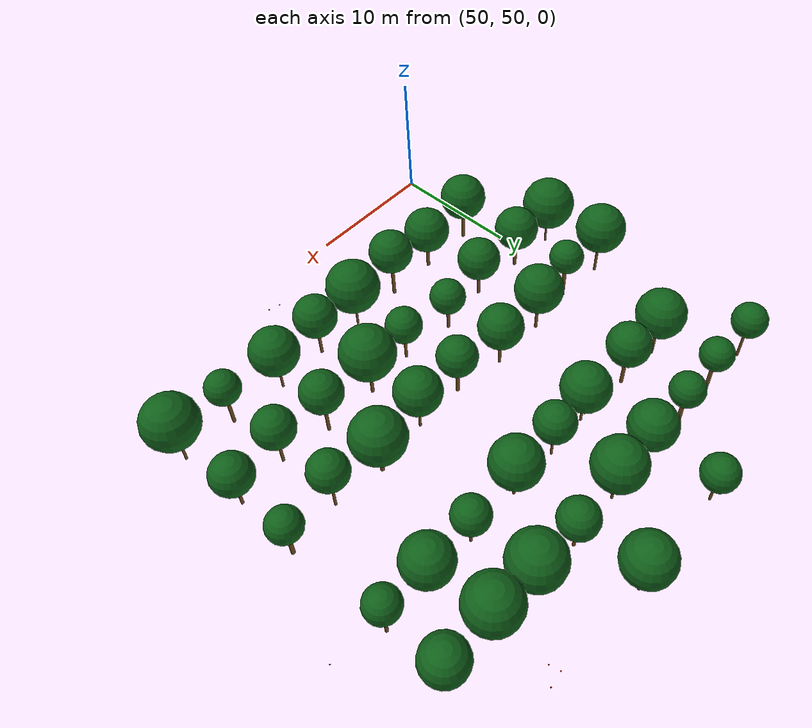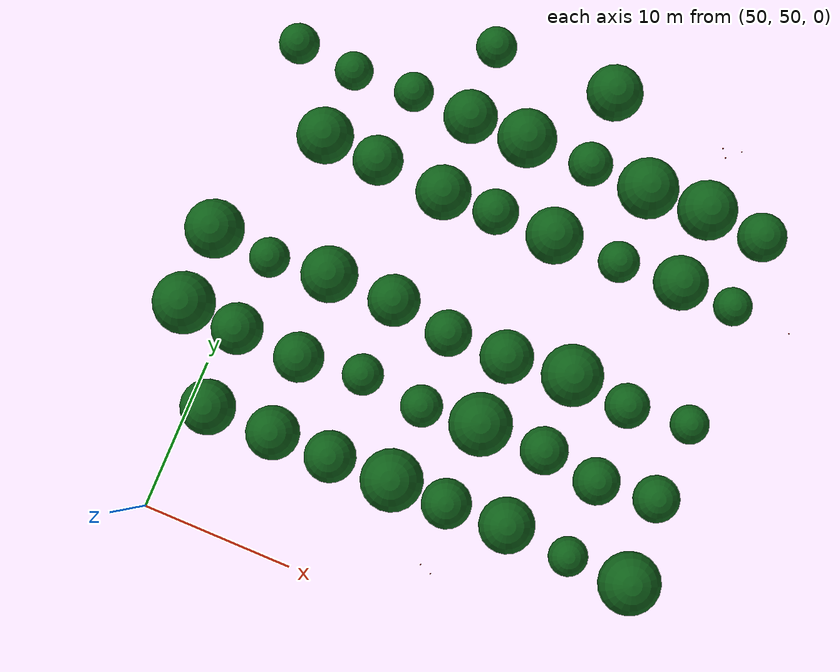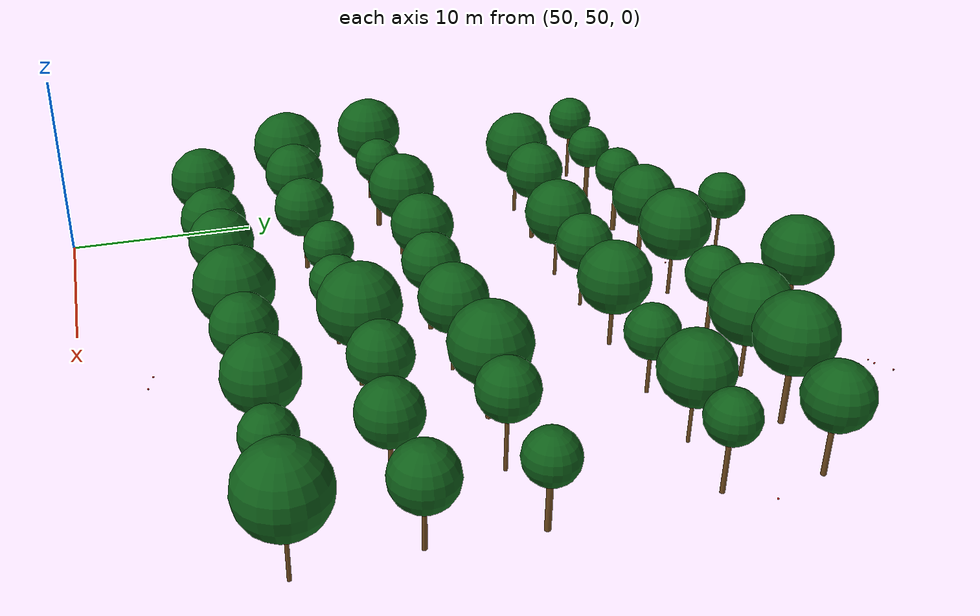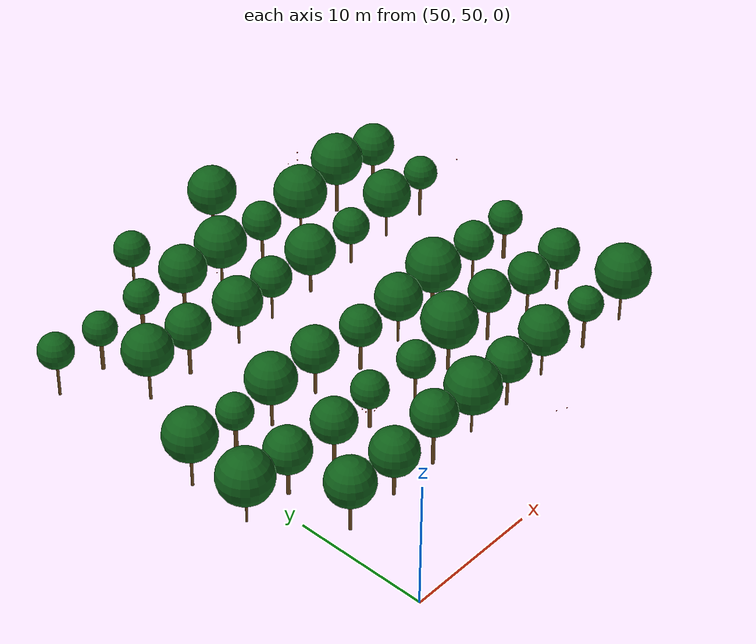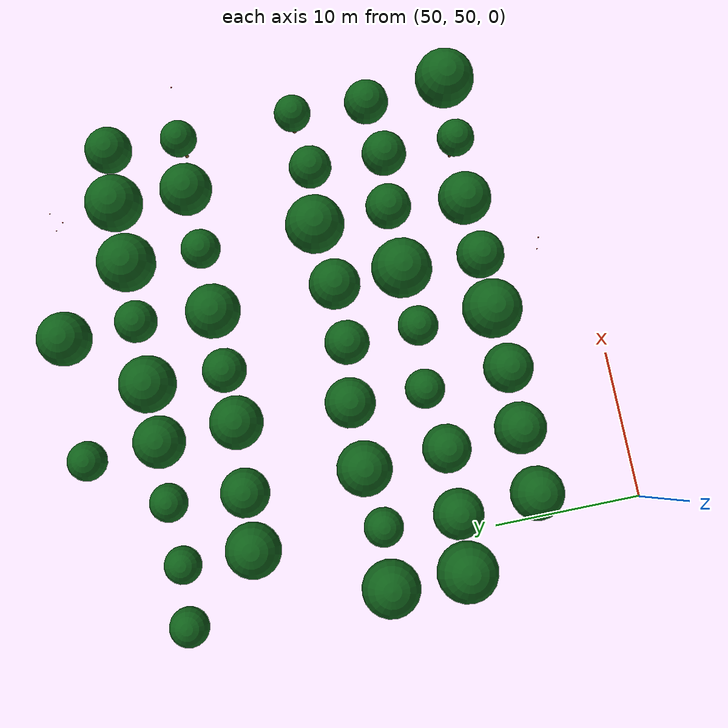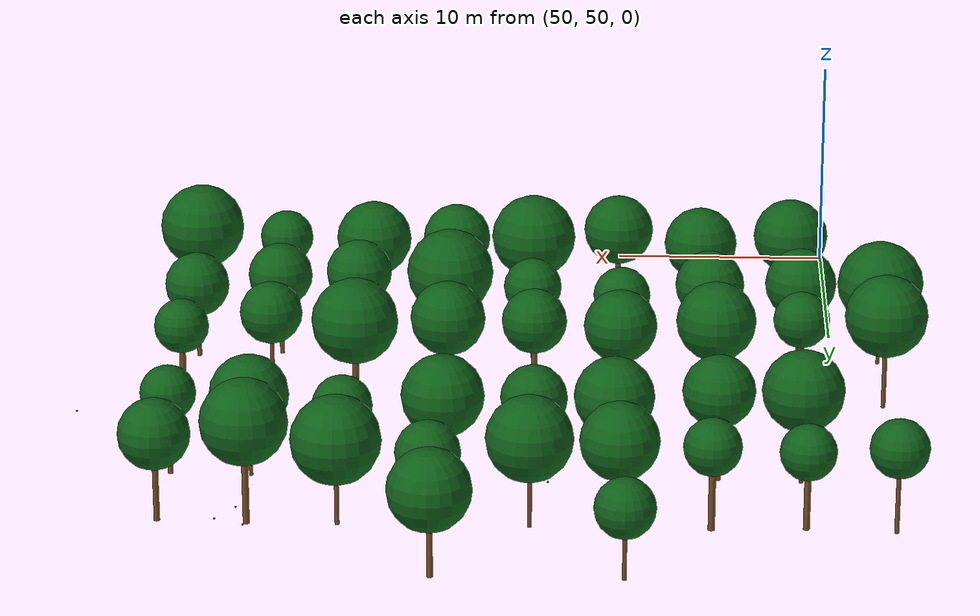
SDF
<sdf version="1.9">
 <world name="cheongsong_orchard">
  <model name="apple_tree_1842">
   <static>true</static>
   <pose>51.83 57.54 0 0 0 0</pose>
   <link name="link">
    <collision name="trunk_col">
     <pose>0 0 1.23 0 0 0</pose>
     <geometry><cylinder><radius>0.118</radius><length>2.47</length></cylinder></geometry>
    </collision>
    <visual name="trunk_vis">
     <pose>0 0 1.23 0 0 0</pose>
     <geometry><cylinder><radius>0.118</radius><length>2.47</length></cylinder></geometry>
     <material><ambient>0.35 0.22 0.08 1</ambient><diffuse>0.45 0.30 0.12 1</diffuse></material>
    </visual>
    <collision name="canopy_col">
     <pose>0 0 4.22 0 0 0</pose>
     <geometry><sphere><radius>1.75</radius></sphere></geometry>
    </collision>
    <visual name="canopy_vis">
     <pose>0 0 4.22 0 0 0</pose>
     <geometry><sphere><radius>1.75</radius></sphere></geometry>
     <material><ambient>0.04 0.28 0.06 1</ambient><diffuse>0.06 0.38 0.10 1</diffuse></material>
    </visual>
   </link>
  </model>
  <model name="apple_tree_1843">
   <static>true</static>
   <pose>56.11 57.61 0 0 0 0</pose>
   <link name="link">
    <collision name="trunk_col">
     <pose>0 0 1.05 0 0 0</pose>
     <geometry><cylinder><radius>0.128</radius><length>2.10</length></cylinder></geometry>
    </collision>
    <visual name="trunk_vis">
     <pose>0 0 1.05 0 0 0</pose>
     <geometry><cylinder><radius>0.128</radius><length>2.10</length></cylinder></geometry>
     <material><ambient>0.35 0.22 0.08 1</ambient><diffuse>0.45 0.30 0.12 1</diffuse></material>
    </visual>
    <collision name="canopy_col">
     <pose>0 0 3.81 0 0 0</pose>
     <geometry><sphere><radius>1.71</radius></sphere></geometry>
    </collision>
    <visual name="canopy_vis">
     <pose>0 0 3.81 0 0 0</pose>
     <geometry><sphere><radius>1.71</radius></sphere></geometry>
     <material><ambient>0.04 0.28 0.06 1</ambient><diffuse>0.06 0.38 0.10 1</diffuse></material>
    </visual>
   </link>
  </model>
  <model name="apple_tree_1844">
   <static>true</static>
   <pose>60.03 57.65 0 0 0 0</pose>
   <link name="link">
    <collision name="trunk_col">
     <pose>0 0 1.43 0 0 0</pose>
     <geometry><cylinder><radius>0.130</radius><length>2.86</length></cylinder></geometry>
    </collision>
    <visual name="trunk_vis">
     <pose>0 0 1.43 0 0 0</pose>
     <geometry><cylinder><radius>0.130</radius><length>2.86</length></cylinder></geometry>
     <material><ambient>0.35 0.22 0.08 1</ambient><diffuse>0.45 0.30 0.12 1</diffuse></material>
    </visual>
    <collision name="canopy_col">
     <pose>0 0 4.49 0 0 0</pose>
     <geometry><sphere><radius>1.63</radius></sphere></geometry>
    </collision>
    <visual name="canopy_vis">
     <pose>0 0 4.49 0 0 0</pose>
     <geometry><sphere><radius>1.63</radius></sphere></geometry>
     <material><ambient>0.04 0.28 0.06 1</ambient><diffuse>0.06 0.38 0.10 1</diffuse></material>
    </visual>
   </link>
  </model>
  <model name="apple_tree_1845">
   <static>true</static>
   <pose>64.08 57.76 0 0 0 0</pose>
   <link name="link">
    <collision name="trunk_col">
     <pose>0 0 1.07 0 0 0</pose>
     <geometry><cylinder><radius>0.083</radius><length>2.15</length></cylinder></geometry>
    </collision>
    <visual name="trunk_vis">
     <pose>0 0 1.07 0 0 0</pose>
     <geometry><cylinder><radius>0.083</radius><length>2.15</length></cylinder></geometry>
     <material><ambient>0.35 0.22 0.08 1</ambient><diffuse>0.45 0.30 0.12 1</diffuse></material>
    </visual>
    <collision name="canopy_col">
     <pose>0 0 4.12 0 0 0</pose>
     <geometry><sphere><radius>1.98</radius></sphere></geometry>
    </collision>
    <visual name="canopy_vis">
     <pose>0 0 4.12 0 0 0</pose>
     <geometry><sphere><radius>1.98</radius></sphere></geometry>
     <material><ambient>0.04 0.28 0.06 1</ambient><diffuse>0.06 0.38 0.10 1</diffuse></material>
    </visual>
   </link>
  </model>
  <model name="apple_tree_1846">
   <static>true</static>
   <pose>67.75 57.74 0 0 0 0</pose>
   <link name="link">
    <collision name="trunk_col">
     <pose>0 0 1.23 0 0 0</pose>
     <geometry><cylinder><radius>0.109</radius><length>2.46</length></cylinder></geometry>
    </collision>
    <visual name="trunk_vis">
     <pose>0 0 1.23 0 0 0</pose>
     <geometry><cylinder><radius>0.109</radius><length>2.46</length></cylinder></geometry>
     <material><ambient>0.35 0.22 0.08 1</ambient><diffuse>0.45 0.30 0.12 1</diffuse></material>
    </visual>
    <collision name="canopy_col">
     <pose>0 0 4.04 0 0 0</pose>
     <geometry><sphere><radius>1.58</radius></sphere></geometry>
    </collision>
    <visual name="canopy_vis">
     <pose>0 0 4.04 0 0 0</pose>
     <geometry><sphere><radius>1.58</radius></sphere></geometry>
     <material><ambient>0.04 0.28 0.06 1</ambient><diffuse>0.06 0.38 0.10 1</diffuse></material>
    </visual>
   </link>
  </model>
  <model name="apple_tree_1847">
   <static>true</static>
   <pose>71.70 57.94 0 0 0 0</pose>
   <link name="link">
    <collision name="trunk_col">
     <pose>0 0 1.12 0 0 0</pose>
     <geometry><cylinder><radius>0.085</radius><length>2.24</length></cylinder></geometry>
    </collision>
    <visual name="trunk_vis">
     <pose>0 0 1.12 0 0 0</pose>
     <geometry><cylinder><radius>0.085</radius><length>2.24</length></cylinder></geometry>
     <material><ambient>0.35 0.22 0.08 1</ambient><diffuse>0.45 0.30 0.12 1</diffuse></material>
    </visual>
    <collision name="canopy_col">
     <pose>0 0 4.01 0 0 0</pose>
     <geometry><sphere><radius>1.77</radius></sphere></geometry>
    </collision>
    <visual name="canopy_vis">
     <pose>0 0 4.01 0 0 0</pose>
     <geometry><sphere><radius>1.77</radius></sphere></geometry>
     <material><ambient>0.04 0.28 0.06 1</ambient><diffuse>0.06 0.38 0.10 1</diffuse></material>
    </visual>
   </link>
  </model>
  <model name="apple_tree_1848">
   <static>true</static>
   <pose>75.91 57.64 0 0 0 0</pose>
   <link name="link">
    <collision name="trunk_col">
     <pose>0 0 1.33 0 0 0</pose>
     <geometry><cylinder><radius>0.122</radius><length>2.67</length></cylinder></geometry>
    </collision>
    <visual name="trunk_vis">
     <pose>0 0 1.33 0 0 0</pose>
     <geometry><cylinder><radius>0.122</radius><length>2.67</length></cylinder></geometry>
     <material><ambient>0.35 0.22 0.08 1</ambient><diffuse>0.45 0.30 0.12 1</diffuse></material>
    </visual>
    <collision name="canopy_col">
     <pose>0 0 3.92 0 0 0</pose>
     <geometry><sphere><radius>1.25</radius></sphere></geometry>
    </collision>
    <visual name="canopy_vis">
     <pose>0 0 3.92 0 0 0</pose>
     <geometry><sphere><radius>1.25</radius></sphere></geometry>
     <material><ambient>0.04 0.28 0.06 1</ambient><diffuse>0.06 0.38 0.10 1</diffuse></material>
    </visual>
   </link>
  </model>
  <model name="apple_tree_1849">
   <static>true</static>
   <pose>79.96 57.59 0 0 0 0</pose>
   <link name="link">
    <collision name="trunk_col">
     <pose>0 0 1.21 0 0 0</pose>
     <geometry><cylinder><radius>0.091</radius><length>2.42</length></cylinder></geometry>
    </collision>
    <visual name="trunk_vis">
     <pose>0 0 1.21 0 0 0</pose>
     <geometry><cylinder><radius>0.091</radius><length>2.42</length></cylinder></geometry>
     <material><ambient>0.35 0.22 0.08 1</ambient><diffuse>0.45 0.30 0.12 1</diffuse></material>
    </visual>
    <collision name="canopy_col">
     <pose>0 0 4.40 0 0 0</pose>
     <geometry><sphere><radius>1.98</radius></sphere></geometry>
    </collision>
    <visual name="canopy_vis">
     <pose>0 0 4.40 0 0 0</pose>
     <geometry><sphere><radius>1.98</radius></sphere></geometry>
     <material><ambient>0.04 0.28 0.06 1</ambient><diffuse>0.06 0.38 0.10 1</diffuse></material>
    </visual>
   </link>
  </model>
  <model name="apple_tree_1897">
   <static>true</static>
   <pose>47.84 62.92 0 0 0 0</pose>
   <link name="link">
    <collision name="trunk_col">
     <pose>0 0 1.02 0 0 0</pose>
     <geometry><cylinder><radius>0.080</radius><length>2.04</length></cylinder></geometry>
    </collision>
    <visual name="trunk_vis">
     <pose>0 0 1.02 0 0 0</pose>
     <geometry><cylinder><radius>0.080</radius><length>2.04</length></cylinder></geometry>
     <material><ambient>0.35 0.22 0.08 1</ambient><diffuse>0.45 0.30 0.12 1</diffuse></material>
    </visual>
    <collision name="canopy_col">
     <pose>0 0 4.03 0 0 0</pose>
     <geometry><sphere><radius>1.99</radius></sphere></geometry>
    </collision>
    <visual name="canopy_vis">
     <pose>0 0 4.03 0 0 0</pose>
     <geometry><sphere><radius>1.99</radius></sphere></geometry>
     <material><ambient>0.04 0.28 0.06 1</ambient><diffuse>0.06 0.38 0.10 1</diffuse></material>
    </visual>
   </link>
  </model>
  <model name="apple_tree_1898">
   <static>true</static>
   <pose>51.52 62.71 0 0 0 0</pose>
   <link name="link">
    <collision name="trunk_col">
     <pose>0 0 1.12 0 0 0</pose>
     <geometry><cylinder><radius>0.136</radius><length>2.25</length></cylinder></geometry>
    </collision>
    <visual name="trunk_vis">
     <pose>0 0 1.12 0 0 0</pose>
     <geometry><cylinder><radius>0.136</radius><length>2.25</length></cylinder></geometry>
     <material><ambient>0.35 0.22 0.08 1</ambient><diffuse>0.45 0.30 0.12 1</diffuse></material>
    </visual>
    <collision name="canopy_col">
     <pose>0 0 3.90 0 0 0</pose>
     <geometry><sphere><radius>1.65</radius></sphere></geometry>
    </collision>
    <visual name="canopy_vis">
     <pose>0 0 3.90 0 0 0</pose>
     <geometry><sphere><radius>1.65</radius></sphere></geometry>
     <material><ambient>0.04 0.28 0.06 1</ambient><diffuse>0.06 0.38 0.10 1</diffuse></material>
    </visual>
   </link>
  </model>
  <model name="apple_tree_1899">
   <static>true</static>
   <pose>55.74 62.55 0 0 0 0</pose>
   <link name="link">
    <collision name="trunk_col">
     <pose>0 0 1.06 0 0 0</pose>
     <geometry><cylinder><radius>0.125</radius><length>2.12</length></cylinder></geometry>
    </collision>
    <visual name="trunk_vis">
     <pose>0 0 1.06 0 0 0</pose>
     <geometry><cylinder><radius>0.125</radius><length>2.12</length></cylinder></geometry>
     <material><ambient>0.35 0.22 0.08 1</ambient><diffuse>0.45 0.30 0.12 1</diffuse></material>
    </visual>
    <collision name="canopy_col">
     <pose>0 0 3.72 0 0 0</pose>
     <geometry><sphere><radius>1.60</radius></sphere></geometry>
    </collision>
    <visual name="canopy_vis">
     <pose>0 0 3.72 0 0 0</pose>
     <geometry><sphere><radius>1.60</radius></sphere></geometry>
     <material><ambient>0.04 0.28 0.06 1</ambient><diffuse>0.06 0.38 0.10 1</diffuse></material>
    </visual>
   </link>
  </model>
  <model name="apple_tree_1900">
   <static>true</static>
   <pose>59.83 63.10 0 0 0 0</pose>
   <link name="link">
    <collision name="trunk_col">
     <pose>0 0 1.02 0 0 0</pose>
     <geometry><cylinder><radius>0.128</radius><length>2.04</length></cylinder></geometry>
    </collision>
    <visual name="trunk_vis">
     <pose>0 0 1.02 0 0 0</pose>
     <geometry><cylinder><radius>0.128</radius><length>2.04</length></cylinder></geometry>
     <material><ambient>0.35 0.22 0.08 1</ambient><diffuse>0.45 0.30 0.12 1</diffuse></material>
    </visual>
    <collision name="canopy_col">
     <pose>0 0 3.37 0 0 0</pose>
     <geometry><sphere><radius>1.32</radius></sphere></geometry>
    </collision>
    <visual name="canopy_vis">
     <pose>0 0 3.37 0 0 0</pose>
     <geometry><sphere><radius>1.32</radius></sphere></geometry>
     <material><ambient>0.04 0.28 0.06 1</ambient><diffuse>0.06 0.38 0.10 1</diffuse></material>
    </visual>
   </link>
  </model>
  <model name="apple_tree_1901">
   <static>true</static>
   <pose>63.99 62.70 0 0 0 0</pose>
   <link name="link">
    <collision name="trunk_col">
     <pose>0 0 1.12 0 0 0</pose>
     <geometry><cylinder><radius>0.104</radius><length>2.23</length></cylinder></geometry>
    </collision>
    <visual name="trunk_vis">
     <pose>0 0 1.12 0 0 0</pose>
     <geometry><cylinder><radius>0.104</radius><length>2.23</length></cylinder></geometry>
     <material><ambient>0.35 0.22 0.08 1</ambient><diffuse>0.45 0.30 0.12 1</diffuse></material>
    </visual>
    <collision name="canopy_col">
     <pose>0 0 3.58 0 0 0</pose>
     <geometry><sphere><radius>1.34</radius></sphere></geometry>
    </collision>
    <visual name="canopy_vis">
     <pose>0 0 3.58 0 0 0</pose>
     <geometry><sphere><radius>1.34</radius></sphere></geometry>
     <material><ambient>0.04 0.28 0.06 1</ambient><diffuse>0.06 0.38 0.10 1</diffuse></material>
    </visual>
   </link>
  </model>
  <model name="apple_tree_1902">
   <static>true</static>
   <pose>67.82 63.05 0 0 0 0</pose>
   <link name="link">
    <collision name="trunk_col">
     <pose>0 0 1.22 0 0 0</pose>
     <geometry><cylinder><radius>0.122</radius><length>2.44</length></cylinder></geometry>
    </collision>
    <visual name="trunk_vis">
     <pose>0 0 1.22 0 0 0</pose>
     <geometry><cylinder><radius>0.122</radius><length>2.44</length></cylinder></geometry>
     <material><ambient>0.35 0.22 0.08 1</ambient><diffuse>0.45 0.30 0.12 1</diffuse></material>
    </visual>
    <collision name="canopy_col">
     <pose>0 0 4.43 0 0 0</pose>
     <geometry><sphere><radius>2.00</radius></sphere></geometry>
    </collision>
    <visual name="canopy_vis">
     <pose>0 0 4.43 0 0 0</pose>
     <geometry><sphere><radius>2.00</radius></sphere></geometry>
     <material><ambient>0.04 0.28 0.06 1</ambient><diffuse>0.06 0.38 0.10 1</diffuse></material>
    </visual>
   </link>
  </model>
  <model name="apple_tree_1903">
   <static>true</static>
   <pose>72.06 63.07 0 0 0 0</pose>
   <link name="link">
    <collision name="trunk_col">
     <pose>0 0 1.43 0 0 0</pose>
     <geometry><cylinder><radius>0.118</radius><length>2.86</length></cylinder></geometry>
    </collision>
    <visual name="trunk_vis">
     <pose>0 0 1.43 0 0 0</pose>
     <geometry><cylinder><radius>0.118</radius><length>2.86</length></cylinder></geometry>
     <material><ambient>0.35 0.22 0.08 1</ambient><diffuse>0.45 0.30 0.12 1</diffuse></material>
    </visual>
    <collision name="canopy_col">
     <pose>0 0 4.37 0 0 0</pose>
     <geometry><sphere><radius>1.51</radius></sphere></geometry>
    </collision>
    <visual name="canopy_vis">
     <pose>0 0 4.37 0 0 0</pose>
     <geometry><sphere><radius>1.51</radius></sphere></geometry>
     <material><ambient>0.04 0.28 0.06 1</ambient><diffuse>0.06 0.38 0.10 1</diffuse></material>
    </visual>
   </link>
  </model>
  <model name="apple_tree_1904">
   <static>true</static>
   <pose>75.78 62.58 0 0 0 0</pose>
   <link name="link">
    <collision name="trunk_col">
     <pose>0 0 1.25 0 0 0</pose>
     <geometry><cylinder><radius>0.104</radius><length>2.49</length></cylinder></geometry>
    </collision>
    <visual name="trunk_vis">
     <pose>0 0 1.25 0 0 0</pose>
     <geometry><cylinder><radius>0.104</radius><length>2.49</length></cylinder></geometry>
     <material><ambient>0.35 0.22 0.08 1</ambient><diffuse>0.45 0.30 0.12 1</diffuse></material>
    </visual>
    <collision name="canopy_col">
     <pose>0 0 3.98 0 0 0</pose>
     <geometry><sphere><radius>1.49</radius></sphere></geometry>
    </collision>
    <visual name="canopy_vis">
     <pose>0 0 3.98 0 0 0</pose>
     <geometry><sphere><radius>1.49</radius></sphere></geometry>
     <material><ambient>0.04 0.28 0.06 1</ambient><diffuse>0.06 0.38 0.10 1</diffuse></material>
    </visual>
   </link>
  </model>
  <model name="apple_tree_1905">
   <static>true</static>
   <pose>79.65 63.00 0 0 0 0</pose>
   <link name="link">
    <collision name="trunk_col">
     <pose>0 0 1.07 0 0 0</pose>
     <geometry><cylinder><radius>0.108</radius><length>2.13</length></cylinder></geometry>
    </collision>
    <visual name="trunk_vis">
     <pose>0 0 1.07 0 0 0</pose>
     <geometry><cylinder><radius>0.108</radius><length>2.13</length></cylinder></geometry>
     <material><ambient>0.35 0.22 0.08 1</ambient><diffuse>0.45 0.30 0.12 1</diffuse></material>
    </visual>
    <collision name="canopy_col">
     <pose>0 0 3.62 0 0 0</pose>
     <geometry><sphere><radius>1.49</radius></sphere></geometry>
    </collision>
    <visual name="canopy_vis">
     <pose>0 0 3.62 0 0 0</pose>
     <geometry><sphere><radius>1.49</radius></sphere></geometry>
     <material><ambient>0.04 0.28 0.06 1</ambient><diffuse>0.06 0.38 0.10 1</diffuse></material>
    </visual>
   </link>
  </model>
  <model name="apple_tree_1954">
   <static>true</static>
   <pose>47.85 67.89 0 0 0 0</pose>
   <link name="link">
    <collision name="trunk_col">
     <pose>0 0 1.32 0 0 0</pose>
     <geometry><cylinder><radius>0.100</radius><length>2.63</length></cylinder></geometry>
    </collision>
    <visual name="trunk_vis">
     <pose>0 0 1.32 0 0 0</pose>
     <geometry><cylinder><radius>0.100</radius><length>2.63</length></cylinder></geometry>
     <material><ambient>0.35 0.22 0.08 1</ambient><diffuse>0.45 0.30 0.12 1</diffuse></material>
    </visual>
    <collision name="canopy_col">
     <pose>0 0 4.51 0 0 0</pose>
     <geometry><sphere><radius>1.88</radius></sphere></geometry>
    </collision>
    <visual name="canopy_vis">
     <pose>0 0 4.51 0 0 0</pose>
     <geometry><sphere><radius>1.88</radius></sphere></geometry>
     <material><ambient>0.04 0.28 0.06 1</ambient><diffuse>0.06 0.38 0.10 1</diffuse></material>
    </visual>
   </link>
  </model>
  <model name="apple_tree_1955">
   <static>true</static>
   <pose>51.66 67.58 0 0 0 0</pose>
   <link name="link">
    <collision name="trunk_col">
     <pose>0 0 1.44 0 0 0</pose>
     <geometry><cylinder><radius>0.144</radius><length>2.87</length></cylinder></geometry>
    </collision>
    <visual name="trunk_vis">
     <pose>0 0 1.44 0 0 0</pose>
     <geometry><cylinder><radius>0.144</radius><length>2.87</length></cylinder></geometry>
     <material><ambient>0.35 0.22 0.08 1</ambient><diffuse>0.45 0.30 0.12 1</diffuse></material>
    </visual>
    <collision name="canopy_col">
     <pose>0 0 4.15 0 0 0</pose>
     <geometry><sphere><radius>1.28</radius></sphere></geometry>
    </collision>
    <visual name="canopy_vis">
     <pose>0 0 4.15 0 0 0</pose>
     <geometry><sphere><radius>1.28</radius></sphere></geometry>
     <material><ambient>0.04 0.28 0.06 1</ambient><diffuse>0.06 0.38 0.10 1</diffuse></material>
    </visual>
   </link>
  </model>
  <model name="apple_tree_1956">
   <static>true</static>
   <pose>55.53 68.04 0 0 0 0</pose>
   <link name="link">
    <collision name="trunk_col">
     <pose>0 0 1.21 0 0 0</pose>
     <geometry><cylinder><radius>0.113</radius><length>2.41</length></cylinder></geometry>
    </collision>
    <visual name="trunk_vis">
     <pose>0 0 1.21 0 0 0</pose>
     <geometry><cylinder><radius>0.113</radius><length>2.41</length></cylinder></geometry>
     <material><ambient>0.35 0.22 0.08 1</ambient><diffuse>0.45 0.30 0.12 1</diffuse></material>
    </visual>
    <collision name="canopy_col">
     <pose>0 0 4.22 0 0 0</pose>
     <geometry><sphere><radius>1.81</radius></sphere></geometry>
    </collision>
    <visual name="canopy_vis">
     <pose>0 0 4.22 0 0 0</pose>
     <geometry><sphere><radius>1.81</radius></sphere></geometry>
     <material><ambient>0.04 0.28 0.06 1</ambient><diffuse>0.06 0.38 0.10 1</diffuse></material>
    </visual>
   </link>
  </model>
  <model name="apple_tree_1957">
   <static>true</static>
   <pose>59.86 68.10 0 0 0 0</pose>
   <link name="link">
    <collision name="trunk_col">
     <pose>0 0 1.15 0 0 0</pose>
     <geometry><cylinder><radius>0.111</radius><length>2.30</length></cylinder></geometry>
    </collision>
    <visual name="trunk_vis">
     <pose>0 0 1.15 0 0 0</pose>
     <geometry><cylinder><radius>0.111</radius><length>2.30</length></cylinder></geometry>
     <material><ambient>0.35 0.22 0.08 1</ambient><diffuse>0.45 0.30 0.12 1</diffuse></material>
    </visual>
    <collision name="canopy_col">
     <pose>0 0 3.96 0 0 0</pose>
     <geometry><sphere><radius>1.66</radius></sphere></geometry>
    </collision>
    <visual name="canopy_vis">
     <pose>0 0 3.96 0 0 0</pose>
     <geometry><sphere><radius>1.66</radius></sphere></geometry>
     <material><ambient>0.04 0.28 0.06 1</ambient><diffuse>0.06 0.38 0.10 1</diffuse></material>
    </visual>
   </link>
  </model>
  <model name="apple_tree_1958">
   <static>true</static>
   <pose>63.78 67.52 0 0 0 0</pose>
   <link name="link">
    <collision name="trunk_col">
     <pose>0 0 1.21 0 0 0</pose>
     <geometry><cylinder><radius>0.127</radius><length>2.43</length></cylinder></geometry>
    </collision>
    <visual name="trunk_vis">
     <pose>0 0 1.21 0 0 0</pose>
     <geometry><cylinder><radius>0.127</radius><length>2.43</length></cylinder></geometry>
     <material><ambient>0.35 0.22 0.08 1</ambient><diffuse>0.45 0.30 0.12 1</diffuse></material>
    </visual>
    <collision name="canopy_col">
     <pose>0 0 3.90 0 0 0</pose>
     <geometry><sphere><radius>1.48</radius></sphere></geometry>
    </collision>
    <visual name="canopy_vis">
     <pose>0 0 3.90 0 0 0</pose>
     <geometry><sphere><radius>1.48</radius></sphere></geometry>
     <material><ambient>0.04 0.28 0.06 1</ambient><diffuse>0.06 0.38 0.10 1</diffuse></material>
    </visual>
   </link>
  </model>
  <model name="apple_tree_1959">
   <static>true</static>
   <pose>67.71 67.56 0 0 0 0</pose>
   <link name="link">
    <collision name="trunk_col">
     <pose>0 0 1.16 0 0 0</pose>
     <geometry><cylinder><radius>0.092</radius><length>2.31</length></cylinder></geometry>
    </collision>
    <visual name="trunk_vis">
     <pose>0 0 1.16 0 0 0</pose>
     <geometry><cylinder><radius>0.092</radius><length>2.31</length></cylinder></geometry>
     <material><ambient>0.35 0.22 0.08 1</ambient><diffuse>0.45 0.30 0.12 1</diffuse></material>
    </visual>
    <collision name="canopy_col">
     <pose>0 0 4.01 0 0 0</pose>
     <geometry><sphere><radius>1.70</radius></sphere></geometry>
    </collision>
    <visual name="canopy_vis">
     <pose>0 0 4.01 0 0 0</pose>
     <geometry><sphere><radius>1.70</radius></sphere></geometry>
     <material><ambient>0.04 0.28 0.06 1</ambient><diffuse>0.06 0.38 0.10 1</diffuse></material>
    </visual>
   </link>
  </model>
  <model name="apple_tree_1960">
   <static>true</static>
   <pose>71.92 68.06 0 0 0 0</pose>
   <link name="link">
    <collision name="trunk_col">
     <pose>0 0 1.03 0 0 0</pose>
     <geometry><cylinder><radius>0.145</radius><length>2.06</length></cylinder></geometry>
    </collision>
    <visual name="trunk_vis">
     <pose>0 0 1.03 0 0 0</pose>
     <geometry><cylinder><radius>0.145</radius><length>2.06</length></cylinder></geometry>
     <material><ambient>0.35 0.22 0.08 1</ambient><diffuse>0.45 0.30 0.12 1</diffuse></material>
    </visual>
    <collision name="canopy_col">
     <pose>0 0 4.03 0 0 0</pose>
     <geometry><sphere><radius>1.97</radius></sphere></geometry>
    </collision>
    <visual name="canopy_vis">
     <pose>0 0 4.03 0 0 0</pose>
     <geometry><sphere><radius>1.97</radius></sphere></geometry>
     <material><ambient>0.04 0.28 0.06 1</ambient><diffuse>0.06 0.38 0.10 1</diffuse></material>
    </visual>
   </link>
  </model>
  <model name="apple_tree_1961">
   <static>true</static>
   <pose>75.76 67.61 0 0 0 0</pose>
   <link name="link">
    <collision name="trunk_col">
     <pose>0 0 1.39 0 0 0</pose>
     <geometry><cylinder><radius>0.093</radius><length>2.78</length></cylinder></geometry>
    </collision>
    <visual name="trunk_vis">
     <pose>0 0 1.39 0 0 0</pose>
     <geometry><cylinder><radius>0.093</radius><length>2.78</length></cylinder></geometry>
     <material><ambient>0.35 0.22 0.08 1</ambient><diffuse>0.45 0.30 0.12 1</diffuse></material>
    </visual>
    <collision name="canopy_col">
     <pose>0 0 4.20 0 0 0</pose>
     <geometry><sphere><radius>1.42</radius></sphere></geometry>
    </collision>
    <visual name="canopy_vis">
     <pose>0 0 4.20 0 0 0</pose>
     <geometry><sphere><radius>1.42</radius></sphere></geometry>
     <material><ambient>0.04 0.28 0.06 1</ambient><diffuse>0.06 0.38 0.10 1</diffuse></material>
    </visual>
   </link>
  </model>
  <model name="apple_tree_1962">
   <static>true</static>
   <pose>79.82 68.06 0 0 0 0</pose>
   <link name="link">
    <collision name="trunk_col">
     <pose>0 0 1.21 0 0 0</pose>
     <geometry><cylinder><radius>0.143</radius><length>2.43</length></cylinder></geometry>
    </collision>
    <visual name="trunk_vis">
     <pose>0 0 1.21 0 0 0</pose>
     <geometry><cylinder><radius>0.143</radius><length>2.43</length></cylinder></geometry>
     <material><ambient>0.35 0.22 0.08 1</ambient><diffuse>0.45 0.30 0.12 1</diffuse></material>
    </visual>
    <collision name="canopy_col">
     <pose>0 0 3.67 0 0 0</pose>
     <geometry><sphere><radius>1.24</radius></sphere></geometry>
    </collision>
    <visual name="canopy_vis">
     <pose>0 0 3.67 0 0 0</pose>
     <geometry><sphere><radius>1.24</radius></sphere></geometry>
     <material><ambient>0.04 0.28 0.06 1</ambient><diffuse>0.06 0.38 0.10 1</diffuse></material>
    </visual>
   </link>
  </model>
  <model name="apple_tree_2012">
   <static>true</static>
   <pose>51.88 75.97 0 0 0 0</pose>
   <link name="link">
    <collision name="trunk_col">
     <pose>0 0 1.29 0 0 0</pose>
     <geometry><cylinder><radius>0.103</radius><length>2.58</length></cylinder></geometry>
    </collision>
    <visual name="trunk_vis">
     <pose>0 0 1.29 0 0 0</pose>
     <geometry><cylinder><radius>0.103</radius><length>2.58</length></cylinder></geometry>
     <material><ambient>0.35 0.22 0.08 1</ambient><diffuse>0.45 0.30 0.12 1</diffuse></material>
    </visual>
    <collision name="canopy_col">
     <pose>0 0 4.38 0 0 0</pose>
     <geometry><sphere><radius>1.81</radius></sphere></geometry>
    </collision>
    <visual name="canopy_vis">
     <pose>0 0 4.38 0 0 0</pose>
     <geometry><sphere><radius>1.81</radius></sphere></geometry>
     <material><ambient>0.04 0.28 0.06 1</ambient><diffuse>0.06 0.38 0.10 1</diffuse></material>
    </visual>
   </link>
  </model>
  <model name="apple_tree_2013">
   <static>true</static>
   <pose>55.53 75.82 0 0 0 0</pose>
   <link name="link">
    <collision name="trunk_col">
     <pose>0 0 1.33 0 0 0</pose>
     <geometry><cylinder><radius>0.130</radius><length>2.65</length></cylinder></geometry>
    </collision>
    <visual name="trunk_vis">
     <pose>0 0 1.33 0 0 0</pose>
     <geometry><cylinder><radius>0.130</radius><length>2.65</length></cylinder></geometry>
     <material><ambient>0.35 0.22 0.08 1</ambient><diffuse>0.45 0.30 0.12 1</diffuse></material>
    </visual>
    <collision name="canopy_col">
     <pose>0 0 4.25 0 0 0</pose>
     <geometry><sphere><radius>1.60</radius></sphere></geometry>
    </collision>
    <visual name="canopy_vis">
     <pose>0 0 4.25 0 0 0</pose>
     <geometry><sphere><radius>1.60</radius></sphere></geometry>
     <material><ambient>0.04 0.28 0.06 1</ambient><diffuse>0.06 0.38 0.10 1</diffuse></material>
    </visual>
   </link>
  </model>
  <model name="apple_tree_2014">
   <static>true</static>
   <pose>60.07 75.59 0 0 0 0</pose>
   <link name="link">
    <collision name="trunk_col">
     <pose>0 0 1.02 0 0 0</pose>
     <geometry><cylinder><radius>0.091</radius><length>2.05</length></cylinder></geometry>
    </collision>
    <visual name="trunk_vis">
     <pose>0 0 1.02 0 0 0</pose>
     <geometry><cylinder><radius>0.091</radius><length>2.05</length></cylinder></geometry>
     <material><ambient>0.35 0.22 0.08 1</ambient><diffuse>0.45 0.30 0.12 1</diffuse></material>
    </visual>
    <collision name="canopy_col">
     <pose>0 0 3.82 0 0 0</pose>
     <geometry><sphere><radius>1.77</radius></sphere></geometry>
    </collision>
    <visual name="canopy_vis">
     <pose>0 0 3.82 0 0 0</pose>
     <geometry><sphere><radius>1.77</radius></sphere></geometry>
     <material><ambient>0.04 0.28 0.06 1</ambient><diffuse>0.06 0.38 0.10 1</diffuse></material>
    </visual>
   </link>
  </model>
  <model name="apple_tree_2015">
   <static>true</static>
   <pose>63.57 75.73 0 0 0 0</pose>
   <link name="link">
    <collision name="trunk_col">
     <pose>0 0 1.15 0 0 0</pose>
     <geometry><cylinder><radius>0.086</radius><length>2.30</length></cylinder></geometry>
    </collision>
    <visual name="trunk_vis">
     <pose>0 0 1.15 0 0 0</pose>
     <geometry><cylinder><radius>0.086</radius><length>2.30</length></cylinder></geometry>
     <material><ambient>0.35 0.22 0.08 1</ambient><diffuse>0.45 0.30 0.12 1</diffuse></material>
    </visual>
    <collision name="canopy_col">
     <pose>0 0 3.77 0 0 0</pose>
     <geometry><sphere><radius>1.47</radius></sphere></geometry>
    </collision>
    <visual name="canopy_vis">
     <pose>0 0 3.77 0 0 0</pose>
     <geometry><sphere><radius>1.47</radius></sphere></geometry>
     <material><ambient>0.04 0.28 0.06 1</ambient><diffuse>0.06 0.38 0.10 1</diffuse></material>
    </visual>
   </link>
  </model>
  <model name="apple_tree_2016">
   <static>true</static>
   <pose>67.55 75.75 0 0 0 0</pose>
   <link name="link">
    <collision name="trunk_col">
     <pose>0 0 1.01 0 0 0</pose>
     <geometry><cylinder><radius>0.109</radius><length>2.01</length></cylinder></geometry>
    </collision>
    <visual name="trunk_vis">
     <pose>0 0 1.01 0 0 0</pose>
     <geometry><cylinder><radius>0.109</radius><length>2.01</length></cylinder></geometry>
     <material><ambient>0.35 0.22 0.08 1</ambient><diffuse>0.45 0.30 0.12 1</diffuse></material>
    </visual>
    <collision name="canopy_col">
     <pose>0 0 3.84 0 0 0</pose>
     <geometry><sphere><radius>1.83</radius></sphere></geometry>
    </collision>
    <visual name="canopy_vis">
     <pose>0 0 3.84 0 0 0</pose>
     <geometry><sphere><radius>1.83</radius></sphere></geometry>
     <material><ambient>0.04 0.28 0.06 1</ambient><diffuse>0.06 0.38 0.10 1</diffuse></material>
    </visual>
   </link>
  </model>
  <model name="apple_tree_2017">
   <static>true</static>
   <pose>71.93 75.84 0 0 0 0</pose>
   <link name="link">
    <collision name="trunk_col">
     <pose>0 0 1.02 0 0 0</pose>
     <geometry><cylinder><radius>0.095</radius><length>2.04</length></cylinder></geometry>
    </collision>
    <visual name="trunk_vis">
     <pose>0 0 1.02 0 0 0</pose>
     <geometry><cylinder><radius>0.095</radius><length>2.04</length></cylinder></geometry>
     <material><ambient>0.35 0.22 0.08 1</ambient><diffuse>0.45 0.30 0.12 1</diffuse></material>
    </visual>
    <collision name="canopy_col">
     <pose>0 0 3.36 0 0 0</pose>
     <geometry><sphere><radius>1.33</radius></sphere></geometry>
    </collision>
    <visual name="canopy_vis">
     <pose>0 0 3.36 0 0 0</pose>
     <geometry><sphere><radius>1.33</radius></sphere></geometry>
     <material><ambient>0.04 0.28 0.06 1</ambient><diffuse>0.06 0.38 0.10 1</diffuse></material>
    </visual>
   </link>
  </model>
  <model name="apple_tree_2018">
   <static>true</static>
   <pose>75.97 76.03 0 0 0 0</pose>
   <link name="link">
    <collision name="trunk_col">
     <pose>0 0 1.09 0 0 0</pose>
     <geometry><cylinder><radius>0.084</radius><length>2.17</length></cylinder></geometry>
    </collision>
    <visual name="trunk_vis">
     <pose>0 0 1.09 0 0 0</pose>
     <geometry><cylinder><radius>0.084</radius><length>2.17</length></cylinder></geometry>
     <material><ambient>0.35 0.22 0.08 1</ambient><diffuse>0.45 0.30 0.12 1</diffuse></material>
    </visual>
    <collision name="canopy_col">
     <pose>0 0 3.92 0 0 0</pose>
     <geometry><sphere><radius>1.75</radius></sphere></geometry>
    </collision>
    <visual name="canopy_vis">
     <pose>0 0 3.92 0 0 0</pose>
     <geometry><sphere><radius>1.75</radius></sphere></geometry>
     <material><ambient>0.04 0.28 0.06 1</ambient><diffuse>0.06 0.38 0.10 1</diffuse></material>
    </visual>
   </link>
  </model>
  <model name="apple_tree_2019">
   <static>true</static>
   <pose>79.53 75.90 0 0 0 0</pose>
   <link name="link">
    <collision name="trunk_col">
     <pose>0 0 1.31 0 0 0</pose>
     <geometry><cylinder><radius>0.114</radius><length>2.63</length></cylinder></geometry>
    </collision>
    <visual name="trunk_vis">
     <pose>0 0 1.31 0 0 0</pose>
     <geometry><cylinder><radius>0.114</radius><length>2.63</length></cylinder></geometry>
     <material><ambient>0.35 0.22 0.08 1</ambient><diffuse>0.45 0.30 0.12 1</diffuse></material>
    </visual>
    <collision name="canopy_col">
     <pose>0 0 3.86 0 0 0</pose>
     <geometry><sphere><radius>1.23</radius></sphere></geometry>
    </collision>
    <visual name="canopy_vis">
     <pose>0 0 3.86 0 0 0</pose>
     <geometry><sphere><radius>1.23</radius></sphere></geometry>
     <material><ambient>0.04 0.28 0.06 1</ambient><diffuse>0.06 0.38 0.10 1</diffuse></material>
    </visual>
   </link>
  </model>
  <model name="apple_tree_2066">
   <static>true</static>
   <pose>47.99 80.83 0 0 0 0</pose>
   <link name="link">
    <collision name="trunk_col">
     <pose>0 0 1.33 0 0 0</pose>
     <geometry><cylinder><radius>0.098</radius><length>2.66</length></cylinder></geometry>
    </collision>
    <visual name="trunk_vis">
     <pose>0 0 1.33 0 0 0</pose>
     <geometry><cylinder><radius>0.098</radius><length>2.66</length></cylinder></geometry>
     <material><ambient>0.35 0.22 0.08 1</ambient><diffuse>0.45 0.30 0.12 1</diffuse></material>
    </visual>
    <collision name="canopy_col">
     <pose>0 0 3.95 0 0 0</pose>
     <geometry><sphere><radius>1.29</radius></sphere></geometry>
    </collision>
    <visual name="canopy_vis">
     <pose>0 0 3.95 0 0 0</pose>
     <geometry><sphere><radius>1.29</radius></sphere></geometry>
     <material><ambient>0.04 0.28 0.06 1</ambient><diffuse>0.06 0.38 0.10 1</diffuse></material>
    </visual>
   </link>
  </model>
  <model name="apple_tree_2067">
   <static>true</static>
   <pose>51.82 80.61 0 0 0 0</pose>
   <link name="link">
    <collision name="trunk_col">
     <pose>0 0 1.20 0 0 0</pose>
     <geometry><cylinder><radius>0.140</radius><length>2.39</length></cylinder></geometry>
    </collision>
    <visual name="trunk_vis">
     <pose>0 0 1.20 0 0 0</pose>
     <geometry><cylinder><radius>0.140</radius><length>2.39</length></cylinder></geometry>
     <material><ambient>0.35 0.22 0.08 1</ambient><diffuse>0.45 0.30 0.12 1</diffuse></material>
    </visual>
    <collision name="canopy_col">
     <pose>0 0 3.62 0 0 0</pose>
     <geometry><sphere><radius>1.23</radius></sphere></geometry>
    </collision>
    <visual name="canopy_vis">
     <pose>0 0 3.62 0 0 0</pose>
     <geometry><sphere><radius>1.23</radius></sphere></geometry>
     <material><ambient>0.04 0.28 0.06 1</ambient><diffuse>0.06 0.38 0.10 1</diffuse></material>
    </visual>
   </link>
  </model>
  <model name="apple_tree_2068">
   <static>true</static>
   <pose>55.87 80.77 0 0 0 0</pose>
   <link name="link">
    <collision name="trunk_col">
     <pose>0 0 1.31 0 0 0</pose>
     <geometry><cylinder><radius>0.148</radius><length>2.62</length></cylinder></geometry>
    </collision>
    <visual name="trunk_vis">
     <pose>0 0 1.31 0 0 0</pose>
     <geometry><cylinder><radius>0.148</radius><length>2.62</length></cylinder></geometry>
     <material><ambient>0.35 0.22 0.08 1</ambient><diffuse>0.45 0.30 0.12 1</diffuse></material>
    </visual>
    <collision name="canopy_col">
     <pose>0 0 3.88 0 0 0</pose>
     <geometry><sphere><radius>1.26</radius></sphere></geometry>
    </collision>
    <visual name="canopy_vis">
     <pose>0 0 3.88 0 0 0</pose>
     <geometry><sphere><radius>1.26</radius></sphere></geometry>
     <material><ambient>0.04 0.28 0.06 1</ambient><diffuse>0.06 0.38 0.10 1</diffuse></material>
    </visual>
   </link>
  </model>
  <model name="apple_tree_2069">
   <static>true</static>
   <pose>59.80 80.66 0 0 0 0</pose>
   <link name="link">
    <collision name="trunk_col">
     <pose>0 0 1.16 0 0 0</pose>
     <geometry><cylinder><radius>0.132</radius><length>2.33</length></cylinder></geometry>
    </collision>
    <visual name="trunk_vis">
     <pose>0 0 1.16 0 0 0</pose>
     <geometry><cylinder><radius>0.132</radius><length>2.33</length></cylinder></geometry>
     <material><ambient>0.35 0.22 0.08 1</ambient><diffuse>0.45 0.30 0.12 1</diffuse></material>
    </visual>
    <collision name="canopy_col">
     <pose>0 0 4.05 0 0 0</pose>
     <geometry><sphere><radius>1.72</radius></sphere></geometry>
    </collision>
    <visual name="canopy_vis">
     <pose>0 0 4.05 0 0 0</pose>
     <geometry><sphere><radius>1.72</radius></sphere></geometry>
     <material><ambient>0.04 0.28 0.06 1</ambient><diffuse>0.06 0.38 0.10 1</diffuse></material>
    </visual>
   </link>
  </model>
  <model name="apple_tree_2070">
   <static>true</static>
   <pose>63.62 80.74 0 0 0 0</pose>
   <link name="link">
    <collision name="trunk_col">
     <pose>0 0 1.12 0 0 0</pose>
     <geometry><cylinder><radius>0.096</radius><length>2.24</length></cylinder></geometry>
    </collision>
    <visual name="trunk_vis">
     <pose>0 0 1.12 0 0 0</pose>
     <geometry><cylinder><radius>0.096</radius><length>2.24</length></cylinder></geometry>
     <material><ambient>0.35 0.22 0.08 1</ambient><diffuse>0.45 0.30 0.12 1</diffuse></material>
    </visual>
    <collision name="canopy_col">
     <pose>0 0 4.14 0 0 0</pose>
     <geometry><sphere><radius>1.89</radius></sphere></geometry>
    </collision>
    <visual name="canopy_vis">
     <pose>0 0 4.14 0 0 0</pose>
     <geometry><sphere><radius>1.89</radius></sphere></geometry>
     <material><ambient>0.04 0.28 0.06 1</ambient><diffuse>0.06 0.38 0.10 1</diffuse></material>
    </visual>
   </link>
  </model>
  <model name="apple_tree_2071">
   <static>true</static>
   <pose>67.93 80.89 0 0 0 0</pose>
   <link name="link">
    <collision name="trunk_col">
     <pose>0 0 1.03 0 0 0</pose>
     <geometry><cylinder><radius>0.113</radius><length>2.05</length></cylinder></geometry>
    </collision>
    <visual name="trunk_vis">
     <pose>0 0 1.03 0 0 0</pose>
     <geometry><cylinder><radius>0.113</radius><length>2.05</length></cylinder></geometry>
     <material><ambient>0.35 0.22 0.08 1</ambient><diffuse>0.45 0.30 0.12 1</diffuse></material>
    </visual>
    <collision name="canopy_col">
     <pose>0 0 3.48 0 0 0</pose>
     <geometry><sphere><radius>1.42</radius></sphere></geometry>
    </collision>
    <visual name="canopy_vis">
     <pose>0 0 3.48 0 0 0</pose>
     <geometry><sphere><radius>1.42</radius></sphere></geometry>
     <material><ambient>0.04 0.28 0.06 1</ambient><diffuse>0.06 0.38 0.10 1</diffuse></material>
    </visual>
   </link>
  </model>
  <model name="apple_tree_2072">
   <static>true</static>
   <pose>71.84 80.76 0 0 0 0</pose>
   <link name="link">
    <collision name="trunk_col">
     <pose>0 0 1.01 0 0 0</pose>
     <geometry><cylinder><radius>0.098</radius><length>2.01</length></cylinder></geometry>
    </collision>
    <visual name="trunk_vis">
     <pose>0 0 1.01 0 0 0</pose>
     <geometry><cylinder><radius>0.098</radius><length>2.01</length></cylinder></geometry>
     <material><ambient>0.35 0.22 0.08 1</ambient><diffuse>0.45 0.30 0.12 1</diffuse></material>
    </visual>
    <collision name="canopy_col">
     <pose>0 0 3.97 0 0 0</pose>
     <geometry><sphere><radius>1.96</radius></sphere></geometry>
    </collision>
    <visual name="canopy_vis">
     <pose>0 0 3.97 0 0 0</pose>
     <geometry><sphere><radius>1.96</radius></sphere></geometry>
     <material><ambient>0.04 0.28 0.06 1</ambient><diffuse>0.06 0.38 0.10 1</diffuse></material>
    </visual>
   </link>
  </model>
  <model name="apple_tree_2073">
   <static>true</static>
   <pose>75.73 80.75 0 0 0 0</pose>
   <link name="link">
    <collision name="trunk_col">
     <pose>0 0 1.42 0 0 0</pose>
     <geometry><cylinder><radius>0.143</radius><length>2.85</length></cylinder></geometry>
    </collision>
    <visual name="trunk_vis">
     <pose>0 0 1.42 0 0 0</pose>
     <geometry><cylinder><radius>0.143</radius><length>2.85</length></cylinder></geometry>
     <material><ambient>0.35 0.22 0.08 1</ambient><diffuse>0.45 0.30 0.12 1</diffuse></material>
    </visual>
    <collision name="canopy_col">
     <pose>0 0 4.75 0 0 0</pose>
     <geometry><sphere><radius>1.90</radius></sphere></geometry>
    </collision>
    <visual name="canopy_vis">
     <pose>0 0 4.75 0 0 0</pose>
     <geometry><sphere><radius>1.90</radius></sphere></geometry>
     <material><ambient>0.04 0.28 0.06 1</ambient><diffuse>0.06 0.38 0.10 1</diffuse></material>
    </visual>
   </link>
  </model>
  <model name="apple_tree_2074">
   <static>true</static>
   <pose>79.58 80.61 0 0 0 0</pose>
   <link name="link">
    <collision name="trunk_col">
     <pose>0 0 1.25 0 0 0</pose>
     <geometry><cylinder><radius>0.127</radius><length>2.51</length></cylinder></geometry>
    </collision>
    <visual name="trunk_vis">
     <pose>0 0 1.25 0 0 0</pose>
     <geometry><cylinder><radius>0.127</radius><length>2.51</length></cylinder></geometry>
     <material><ambient>0.35 0.22 0.08 1</ambient><diffuse>0.45 0.30 0.12 1</diffuse></material>
    </visual>
    <collision name="canopy_col">
     <pose>0 0 4.06 0 0 0</pose>
     <geometry><sphere><radius>1.56</radius></sphere></geometry>
    </collision>
    <visual name="canopy_vis">
     <pose>0 0 4.06 0 0 0</pose>
     <geometry><sphere><radius>1.56</radius></sphere></geometry>
     <material><ambient>0.04 0.28 0.06 1</ambient><diffuse>0.06 0.38 0.10 1</diffuse></material>
    </visual>
   </link>
  </model>
  <model name="apple_tree_2126">
   <static>true</static>
   <pose>59.54 85.59 0 0 0 0</pose>
   <link name="link">
    <collision name="trunk_col">
     <pose>0 0 1.00 0 0 0</pose>
     <geometry><cylinder><radius>0.091</radius><length>2.00</length></cylinder></geometry>
    </collision>
    <visual name="trunk_vis">
     <pose>0 0 1.00 0 0 0</pose>
     <geometry><cylinder><radius>0.091</radius><length>2.00</length></cylinder></geometry>
     <material><ambient>0.35 0.22 0.08 1</ambient><diffuse>0.45 0.30 0.12 1</diffuse></material>
    </visual>
    <collision name="canopy_col">
     <pose>0 0 3.30 0 0 0</pose>
     <geometry><sphere><radius>1.31</radius></sphere></geometry>
    </collision>
    <visual name="canopy_vis">
     <pose>0 0 3.30 0 0 0</pose>
     <geometry><sphere><radius>1.31</radius></sphere></geometry>
     <material><ambient>0.04 0.28 0.06 1</ambient><diffuse>0.06 0.38 0.10 1</diffuse></material>
    </visual>
   </link>
  </model>
  <model name="apple_tree_2128">
   <static>true</static>
   <pose>67.62 85.58 0 0 0 0</pose>
   <link name="link">
    <collision name="trunk_col">
     <pose>0 0 1.10 0 0 0</pose>
     <geometry><cylinder><radius>0.125</radius><length>2.19</length></cylinder></geometry>
    </collision>
    <visual name="trunk_vis">
     <pose>0 0 1.10 0 0 0</pose>
     <geometry><cylinder><radius>0.125</radius><length>2.19</length></cylinder></geometry>
     <material><ambient>0.35 0.22 0.08 1</ambient><diffuse>0.45 0.30 0.12 1</diffuse></material>
    </visual>
    <collision name="canopy_col">
     <pose>0 0 4.00 0 0 0</pose>
     <geometry><sphere><radius>1.80</radius></sphere></geometry>
    </collision>
    <visual name="canopy_vis">
     <pose>0 0 4.00 0 0 0</pose>
     <geometry><sphere><radius>1.80</radius></sphere></geometry>
     <material><ambient>0.04 0.28 0.06 1</ambient><diffuse>0.06 0.38 0.10 1</diffuse></material>
    </visual>
   </link>
  </model>
  <model name="apple_1790_3">
   <static>true</static>
   <pose>67.74 53.52 2.03 0 0 0</pose>
   <link name="link">
    <visual name="visual">
     <geometry><sphere><radius>0.04</radius></sphere></geometry>
     <material><ambient>0.7 0.05 0.02 1</ambient><diffuse>0.9 0.10 0.05 1</diffuse></material>
    </visual>
   </link>
  </model>
  <model name="apple_1790_4">
   <static>true</static>
   <pose>68.51 53.24 1.94 0 0 0</pose>
   <link name="link">
    <visual name="visual">
     <geometry><sphere><radius>0.04</radius></sphere></geometry>
     <material><ambient>0.7 0.05 0.02 1</ambient><diffuse>0.9 0.10 0.05 1</diffuse></material>
    </visual>
   </link>
  </model>
  <model name="apple_1900_0">
   <static>true</static>
   <pose>58.96 62.66 2.17 0 0 0</pose>
   <link name="link">
    <visual name="visual">
     <geometry><sphere><radius>0.04</radius></sphere></geometry>
     <material><ambient>0.7 0.05 0.02 1</ambient><diffuse>0.9 0.10 0.05 1</diffuse></material>
    </visual>
   </link>
  </model>
  <model name="apple_1900_1">
   <static>true</static>
   <pose>60.15 62.80 1.65 0 0 0</pose>
   <link name="link">
    <visual name="visual">
     <geometry><sphere><radius>0.04</radius></sphere></geometry>
     <material><ambient>0.7 0.05 0.02 1</ambient><diffuse>0.9 0.10 0.05 1</diffuse></material>
    </visual>
   </link>
  </model>
  <model name="apple_1900_2">
   <static>true</static>
   <pose>59.97 62.80 1.55 0 0 0</pose>
   <link name="link">
    <visual name="visual">
     <geometry><sphere><radius>0.04</radius></sphere></geometry>
     <material><ambient>0.7 0.05 0.02 1</ambient><diffuse>0.9 0.10 0.05 1</diffuse></material>
    </visual>
   </link>
  </model>
  <model name="apple_1900_3">
   <static>true</static>
   <pose>58.83 62.86 2.39 0 0 0</pose>
   <link name="link">
    <visual name="visual">
     <geometry><sphere><radius>0.04</radius></sphere></geometry>
     <material><ambient>0.7 0.05 0.02 1</ambient><diffuse>0.9 0.10 0.05 1</diffuse></material>
    </visual>
   </link>
  </model>
  <model name="apple_1960_0">
   <static>true</static>
   <pose>72.61 67.89 2.25 0 0 0</pose>
   <link name="link">
    <visual name="visual">
     <geometry><sphere><radius>0.04</radius></sphere></geometry>
     <material><ambient>0.7 0.05 0.02 1</ambient><diffuse>0.9 0.10 0.05 1</diffuse></material>
    </visual>
   </link>
  </model>
  <model name="apple_1960_1">
   <static>true</static>
   <pose>72.30 67.93 2.10 0 0 0</pose>
   <link name="link">
    <visual name="visual">
     <geometry><sphere><radius>0.04</radius></sphere></geometry>
     <material><ambient>0.7 0.05 0.02 1</ambient><diffuse>0.9 0.10 0.05 1</diffuse></material>
    </visual>
   </link>
  </model>
  <model name="apple_1960_2">
   <static>true</static>
   <pose>72.01 67.76 2.50 0 0 0</pose>
   <link name="link">
    <visual name="visual">
     <geometry><sphere><radius>0.04</radius></sphere></geometry>
     <material><ambient>0.7 0.05 0.02 1</ambient><diffuse>0.9 0.10 0.05 1</diffuse></material>
    </visual>
   </link>
  </model>
  <model name="apple_2020_3">
   <static>true</static>
   <pose>83.56 75.82 2.89 0 0 0</pose>
   <link name="link">
    <visual name="visual">
     <geometry><sphere><radius>0.04</radius></sphere></geometry>
     <material><ambient>0.7 0.05 0.02 1</ambient><diffuse>0.9 0.10 0.05 1</diffuse></material>
    </visual>
   </link>
  </model>
  <model name="apple_2070_0">
   <static>true</static>
   <pose>63.94 80.26 2.08 0 0 0</pose>
   <link name="link">
    <visual name="visual">
     <geometry><sphere><radius>0.04</radius></sphere></geometry>
     <material><ambient>0.7 0.05 0.02 1</ambient><diffuse>0.9 0.10 0.05 1</diffuse></material>
    </visual>
   </link>
  </model>
  <model name="apple_2070_1">
   <static>true</static>
   <pose>63.19 79.40 1.62 0 0 0</pose>
   <link name="link">
    <visual name="visual">
     <geometry><sphere><radius>0.04</radius></sphere></geometry>
     <material><ambient>0.7 0.05 0.02 1</ambient><diffuse>0.9 0.10 0.05 1</diffuse></material>
    </visual>
   </link>
  </model>
  <model name="apple_2070_2">
   <static>true</static>
   <pose>64.39 81.66 2.74 0 0 0</pose>
   <link name="link">
    <visual name="visual">
     <geometry><sphere><radius>0.04</radius></sphere></geometry>
     <material><ambient>0.7 0.05 0.02 1</ambient><diffuse>0.9 0.10 0.05 1</diffuse></material>
    </visual>
   </link>
  </model>
  <model name="apple_2070_3">
   <static>true</static>
   <pose>62.85 80.42 1.97 0 0 0</pose>
   <link name="link">
    <visual name="visual">
     <geometry><sphere><radius>0.04</radius></sphere></geometry>
     <material><ambient>0.7 0.05 0.02 1</ambient><diffuse>0.9 0.10 0.05 1</diffuse></material>
    </visual>
   </link>
  </model>
  <model name="apple_2070_4">
   <static>true</static>
   <pose>63.51 80.43 2.18 0 0 0</pose>
   <link name="link">
    <visual name="visual">
     <geometry><sphere><radius>0.04</radius></sphere></geometry>
     <material><ambient>0.7 0.05 0.02 1</ambient><diffuse>0.9 0.10 0.05 1</diffuse></material>
    </visual>
   </link>
  </model>
  <model name="apple_2130_0">
   <static>true</static>
   <pose>76.53 85.52 2.52 0 0 0</pose>
   <link name="link">
    <visual name="visual">
     <geometry><sphere><radius>0.04</radius></sphere></geometry>
     <material><ambient>0.7 0.05 0.02 1</ambient><diffuse>0.9 0.10 0.05 1</diffuse></material>
    </visual>
   </link>
  </model>
  <model name="apple_2130_1">
   <static>true</static>
   <pose>75.71 84.72 2.68 0 0 0</pose>
   <link name="link">
    <visual name="visual">
     <geometry><sphere><radius>0.04</radius></sphere></geometry>
     <material><ambient>0.7 0.05 0.02 1</ambient><diffuse>0.9 0.10 0.05 1</diffuse></material>
    </visual>
   </link>
  </model>
  <model name="apple_2130_4">
   <static>true</static>
   <pose>75.38 85.36 2.17 0 0 0</pose>
   <link name="link">
    <visual name="visual">
     <geometry><sphere><radius>0.04</radius></sphere></geometry>
     <material><ambient>0.7 0.05 0.02 1</ambient><diffuse>0.9 0.10 0.05 1</diffuse></material>
    </visual>
   </link>
  </model>
 </world>
</sdf>
